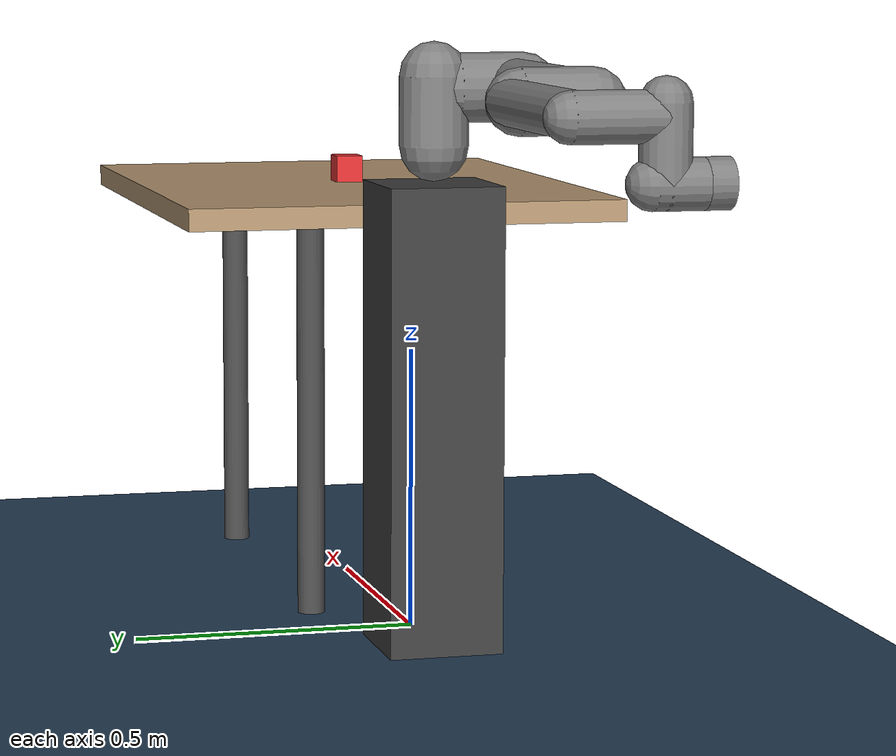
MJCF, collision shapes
<mujoco model="ur5e">
  <compiler angle="radian" meshdir="assets" autolimits="true"/>

  <option integrator="implicitfast"/>

  <visual>
    <headlight diffuse="0.6 0.6 0.6" ambient="0.3 0.3 0.3" specular="0 0 0"/>
    <rgba haze="0.15 0.25 0.35 1"/>
    <global azimuth="150" elevation="-25"/>
  </visual>

  <asset>
    <texture type="skybox" builtin="gradient" rgb1="0.3 0.5 0.7" rgb2="0.1 0.1 0.15" width="512" height="3072"/>
    <texture type="2d" name="groundplane" builtin="checker" mark="edge"
      rgb1="0.2 0.3 0.4" rgb2="0.1 0.2 0.3" markrgb="0.8 0.8 0.8" width="300" height="300"/>
    <material name="groundplane" texture="groundplane" texuniform="true" texrepeat="5 5" reflectance="0.2"/>
    <material name="table_mat" rgba="0.72 0.60 0.45 1" specular="0.3" shininess="0.1"/>
    <material name="pedestal_mat" rgba="0.25 0.25 0.25 1" specular="0.2" shininess="0.1"/>

    <material class="ur5e" name="black" rgba="0.033 0.033 0.033 1"/>
    <material class="ur5e" name="jointgray" rgba="0.278 0.278 0.278 1"/>
    <material class="ur5e" name="linkgray" rgba="0.82 0.82 0.82 1"/>
    <material class="ur5e" name="urblue" rgba="0.49 0.678 0.8 1"/>

    <mesh file="base_0.obj"/>
    <mesh file="base_1.obj"/>
    <mesh file="shoulder_0.obj"/>
    <mesh file="shoulder_1.obj"/>
    <mesh file="shoulder_2.obj"/>
    <mesh file="upperarm_0.obj"/>
    <mesh file="upperarm_1.obj"/>
    <mesh file="upperarm_2.obj"/>
    <mesh file="upperarm_3.obj"/>
    <mesh file="forearm_0.obj"/>
    <mesh file="forearm_1.obj"/>
    <mesh file="forearm_2.obj"/>
    <mesh file="forearm_3.obj"/>
    <mesh file="wrist1_0.obj"/>
    <mesh file="wrist1_1.obj"/>
    <mesh file="wrist1_2.obj"/>
    <mesh file="wrist2_0.obj"/>
    <mesh file="wrist2_1.obj"/>
    <mesh file="wrist2_2.obj"/>
    <mesh file="wrist3.obj"/>
  </asset>

  <default>
    <default class="ur5e">
      <material specular="0.5" shininess="0.25"/>
      <joint axis="0 1 0" range="-6.28319 6.28319" armature="0.1"/>
      <general gaintype="fixed" biastype="affine" ctrlrange="-6.2831 6.2831" gainprm="2000" biasprm="0 -2000 -400"
        forcerange="-150 150"/>
      <default class="size3">
        <default class="size3_limited">
          <joint range="-3.1415 3.1415"/>
          <general ctrlrange="-3.1415 3.1415"/>
        </default>
      </default>
      <default class="size1">
        <general gainprm="500" biasprm="0 -500 -100" forcerange="-28 28"/>
      </default>
      <default class="visual">
        <geom type="mesh" contype="0" conaffinity="0" group="2"/>
      </default>
      <default class="collision">
        <geom type="capsule" group="3"/>
        <default class="eef_collision">
          <geom type="cylinder"/>
        </default>
      </default>
      <site size="0.001" rgba="0.5 0.5 0.5 0.3" group="4"/>
    </default>
  </default>

  <worldbody>
    <!-- Two lights: overhead key + soft fill -->
    <light pos="0 0 2.5" dir="0 0 -1" directional="true" diffuse="0.7 0.7 0.7" specular="0.1 0.1 0.1"/>
    <light pos="1 -1 2" dir="-0.5 0.5 -1" directional="true" diffuse="0.4 0.4 0.4" specular="0 0 0"/>

    <!-- Ground plane -->
    <geom name="floor" size="0 0 0.05" type="plane" material="groundplane"/>

    <!-- Table top: 1m x 0.8m surface, 4cm thick, surface at z=0.76 -->
    <geom name="table_top" type="box" size="0.5 0.4 0.02" pos="0.5 0 0.74" material="table_mat"/>
    <!-- Four legs from floor to underside of table top -->
    <geom name="leg_fl" type="cylinder" size="0.025 0.37" pos="0.15  0.15 0.37" rgba="0.3 0.3 0.3 1"/>
    <geom name="leg_fr" type="cylinder" size="0.025 0.37" pos="0.85  0.15 0.37" rgba="0.3 0.3 0.3 1"/>
    <geom name="leg_bl" type="cylinder" size="0.025 0.37" pos="0.15 -0.15 0.37" rgba="0.3 0.3 0.3 1"/>
    <geom name="leg_br" type="cylinder" size="0.025 0.37" pos="0.85 -0.15 0.37" rgba="0.3 0.3 0.3 1"/>

    <!-- Pedestal: raises arm base to table surface height (z=0.76) -->
    <geom name="pedestal" type="box" size="0.1 0.1 0.405" pos="-0.15 0 0.405" material="pedestal_mat"/>

    <!-- UR5e base mounted at z=0.81, same level as table surface -->
    <body name="base" pos="-0.15 0 0.81" quat="0 0 0 -1" childclass="ur5e">
      <inertial mass="4.0" pos="0 0 0" diaginertia="0.00443333156 0.00443333156 0.0072"/>
      <geom mesh="base_0" material="black" class="visual"/>
      <geom mesh="base_1" material="jointgray" class="visual"/>
      <body name="shoulder_link" pos="0 0 0.163">
        <inertial mass="3.7" pos="0 0 0" diaginertia="0.0102675 0.0102675 0.00666"/>
        <joint name="shoulder_pan_joint" class="size3" axis="0 0 1"/>
        <geom mesh="shoulder_0" material="urblue" class="visual"/>
        <geom mesh="shoulder_1" material="black" class="visual"/>
        <geom mesh="shoulder_2" material="jointgray" class="visual"/>
        <geom class="collision" size="0.06 0.06" pos="0 0 -0.04"/>
        <body name="upper_arm_link" pos="0 0.138 0" quat="1 0 1 0">
          <inertial mass="8.393" pos="0 0 0.2125" diaginertia="0.133886 0.133886 0.0151074"/>
          <joint name="shoulder_lift_joint" class="size3"/>
          <geom mesh="upperarm_0" material="linkgray" class="visual"/>
          <geom mesh="upperarm_1" material="black" class="visual"/>
          <geom mesh="upperarm_2" material="jointgray" class="visual"/>
          <geom mesh="upperarm_3" material="urblue" class="visual"/>
          <geom class="collision" pos="0 -0.04 0" quat="1 1 0 0" size="0.06 0.06"/>
          <geom class="collision" size="0.05 0.2" pos="0 0 0.2"/>
          <body name="forearm_link" pos="0 -0.131 0.425">
            <inertial mass="2.275" pos="0 0 0.196" diaginertia="0.0311796 0.0311796 0.004095"/>
            <joint name="elbow_joint" class="size3_limited"/>
            <geom mesh="forearm_0" material="urblue" class="visual"/>
            <geom mesh="forearm_1" material="linkgray" class="visual"/>
            <geom mesh="forearm_2" material="black" class="visual"/>
            <geom mesh="forearm_3" material="jointgray" class="visual"/>
            <geom class="collision" pos="0 0.08 0" quat="1 1 0 0" size="0.055 0.06"/>
            <geom class="collision" size="0.038 0.19" pos="0 0 0.2"/>
            <body name="wrist_1_link" pos="0 0 0.392" quat="1 0 1 0">
              <inertial mass="1.219" pos="0 0.127 0" diaginertia="0.0025599 0.0025599 0.0021942"/>
              <joint name="wrist_1_joint" class="size1"/>
              <geom mesh="wrist1_0" material="black" class="visual"/>
              <geom mesh="wrist1_1" material="urblue" class="visual"/>
              <geom mesh="wrist1_2" material="jointgray" class="visual"/>
              <geom class="collision" pos="0 0.05 0" quat="1 1 0 0" size="0.04 0.07"/>
              <body name="wrist_2_link" pos="0 0.127 0">
                <inertial mass="1.219" pos="0 0 0.1" diaginertia="0.0025599 0.0025599 0.0021942"/>
                <joint name="wrist_2_joint" axis="0 0 1" class="size1"/>
                <geom mesh="wrist2_0" material="black" class="visual"/>
                <geom mesh="wrist2_1" material="urblue" class="visual"/>
                <geom mesh="wrist2_2" material="jointgray" class="visual"/>
                <geom class="collision" size="0.04 0.06" pos="0 0 0.04"/>
                <geom class="collision" pos="0 0.02 0.1" quat="1 1 0 0" size="0.04 0.04"/>
                <body name="wrist_3_link" pos="0 0 0.1">
                  <inertial mass="0.1889" pos="0 0.0771683 0" quat="1 0 0 1"
                    diaginertia="0.000132134 9.90863e-05 9.90863e-05"/>
                  <joint name="wrist_3_joint" class="size1"/>
                  <geom material="linkgray" mesh="wrist3" class="visual"/>
                  <geom class="eef_collision" pos="0 0.08 0" quat="1 1 0 0" size="0.04 0.02"/>
                  <site name="attachment_site" pos="0 0.1 0" quat="-1 1 0 0"/>
                  <camera name="wrist_cam" pos="0 0.15 0" quat="0.7071 0.7071 0 0" fovy="60"/>
                </body>
              </body>
            </body>
          </body>
        </body>
      </body>
    </body>

    <!-- Red cube sitting on table surface. Table top surface = z=0.76, cube half-height=0.025 -->
    <body name="cube" pos="0.5 0 0.785">
      <geom name="cube_geom" type="box" size="0.025 0.025 0.025" rgba="0.9 0.2 0.2 1"/>
      <inertial mass="0.05" pos="0 0 0" diaginertia="1e-5 1e-5 1e-5"/>
      <joint name="cube_free" type="free"/>
    </body>
  </worldbody>

  <actuator>
    <general class="size3" name="shoulder_pan" joint="shoulder_pan_joint"/>
    <general class="size3" name="shoulder_lift" joint="shoulder_lift_joint"/>
    <general class="size3_limited" name="elbow" joint="elbow_joint"/>
    <general class="size1" name="wrist_1" joint="wrist_1_joint"/>
    <general class="size1" name="wrist_2" joint="wrist_2_joint"/>
    <general class="size1" name="wrist_3" joint="wrist_3_joint"/>
  </actuator>

  <keyframe>
    <key name="home"
         qpos="-3.1416 -1.5708 1.5708 -1.5708 -1.5708 0  0.5 0 0.785 1 0 0 0"
         ctrl="-3.1416 -1.5708 1.5708 -1.5708 -1.5708 0"/>
  </keyframe>
</mujoco>
